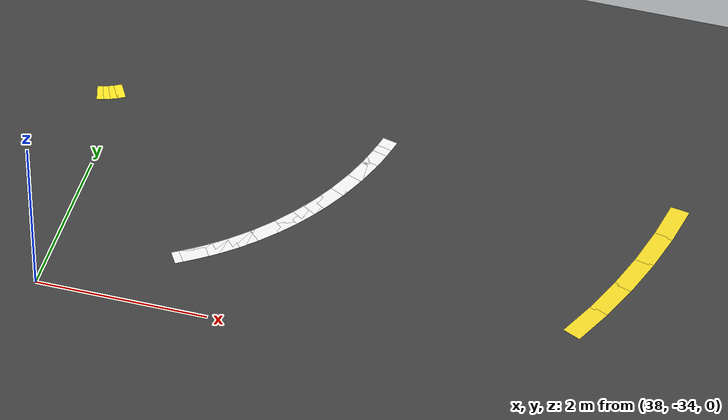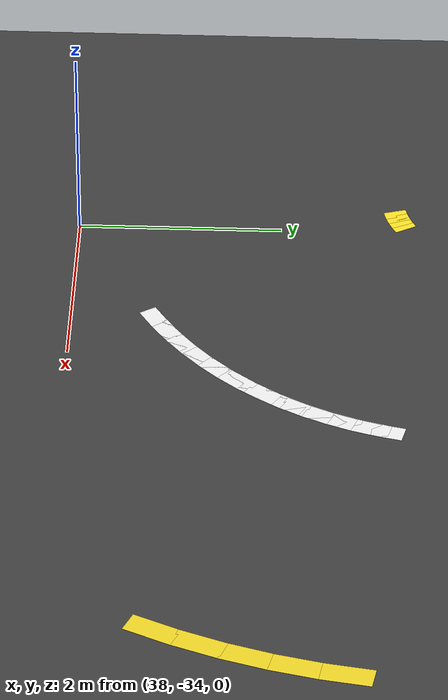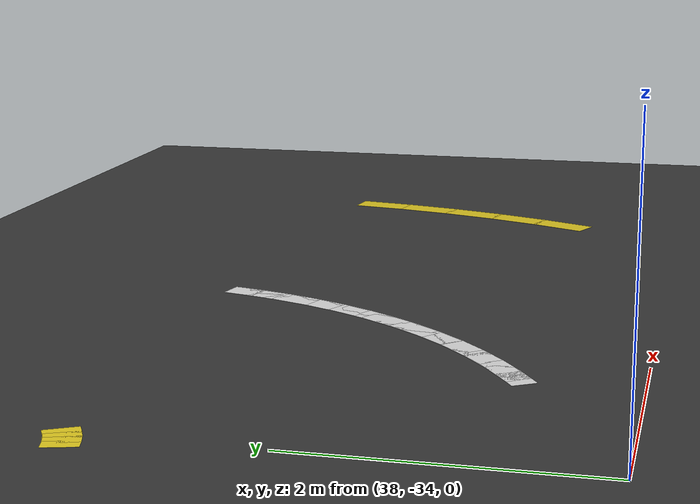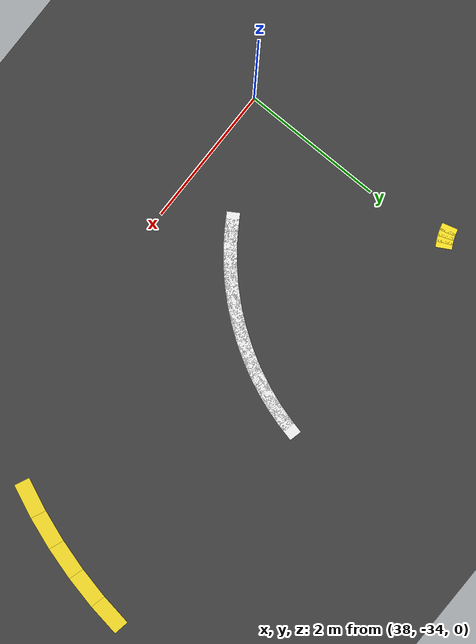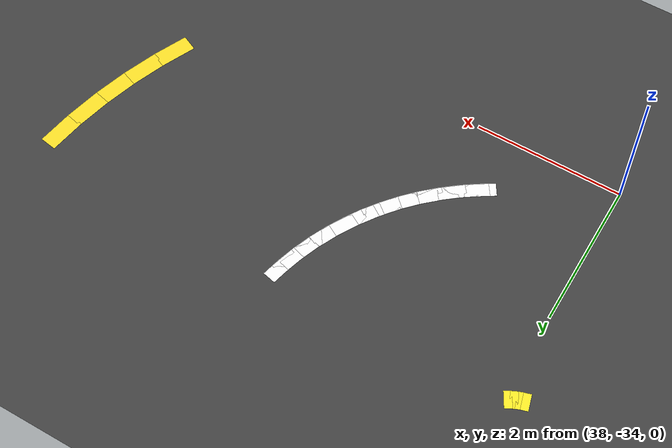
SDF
<sdf version="1.7">
 <world name="compact_city">
  <model name="ground_plane">
   <static>1</static>
   <pose>0 0 0.01 0 -0 0</pose>
   <link name="link">
    <collision name="collision">
     <geometry><plane><normal>0 0 1</normal><size>200 200</size></plane></geometry>
    </collision>
    <visual name="visual">
     <geometry><plane><normal>0 0 1</normal><size>200 200</size></plane></geometry>
     <material>
      <ambient>0.2 0.2 0.2 1</ambient>
      <diffuse>0.25 0.25 0.25 1</diffuse>
      <specular>0.1 0.1 0.1 1</specular>
     </material>
    </visual>
   </link>
  </model>
  <model name="ac_578">
   <static>1</static>
   <pose>39.4803 -33.1845 0.038 0 -0 0.556315</pose>
   <link name="link">
    <visual name="v">
     <geometry><box><size>0.260117 0.18 0.002</size></box></geometry>
     <material><ambient>1 1 1 1</ambient><diffuse>0.95 0.95 0.95 1</diffuse></material>
    </visual>
   </link>
  </model>
  <model name="ac_579">
   <static>1</static>
   <pose>39.6843 -33.0481 0.038 0 -0 0.621815</pose>
   <link name="link">
    <visual name="v">
     <geometry><box><size>0.260117 0.18 0.002</size></box></geometry>
     <material><ambient>1 1 1 1</ambient><diffuse>0.95 0.95 0.95 1</diffuse></material>
    </visual>
   </link>
  </model>
  <model name="ac_580">
   <static>1</static>
   <pose>39.879 -32.8987 0.038 0 -0 0.687215</pose>
   <link name="link">
    <visual name="v">
     <geometry><box><size>0.260117 0.18 0.002</size></box></geometry>
     <material><ambient>1 1 1 1</ambient><diffuse>0.95 0.95 0.95 1</diffuse></material>
    </visual>
   </link>
  </model>
  <model name="ac_581">
   <static>1</static>
   <pose>40.0635 -32.7371 0.038 0 -0 0.752715</pose>
   <link name="link">
    <visual name="v">
     <geometry><box><size>0.260117 0.18 0.002</size></box></geometry>
     <material><ambient>1 1 1 1</ambient><diffuse>0.95 0.95 0.95 1</diffuse></material>
    </visual>
   </link>
  </model>
  <model name="ac_582">
   <static>1</static>
   <pose>40.2371 -32.5635 0.038 0 -0 0.818115</pose>
   <link name="link">
    <visual name="v">
     <geometry><box><size>0.260117 0.18 0.002</size></box></geometry>
     <material><ambient>1 1 1 1</ambient><diffuse>0.95 0.95 0.95 1</diffuse></material>
    </visual>
   </link>
  </model>
  <model name="ac_583">
   <static>1</static>
   <pose>40.3987 -32.379 0.038 0 -0 0.883615</pose>
   <link name="link">
    <visual name="v">
     <geometry><box><size>0.260117 0.18 0.002</size></box></geometry>
     <material><ambient>1 1 1 1</ambient><diffuse>0.95 0.95 0.95 1</diffuse></material>
    </visual>
   </link>
  </model>
  <model name="ac_584">
   <static>1</static>
   <pose>40.5481 -32.1843 0.038 0 -0 0.949015</pose>
   <link name="link">
    <visual name="v">
     <geometry><box><size>0.260117 0.18 0.002</size></box></geometry>
     <material><ambient>1 1 1 1</ambient><diffuse>0.95 0.95 0.95 1</diffuse></material>
    </visual>
   </link>
  </model>
  <model name="ac_585">
   <static>1</static>
   <pose>40.6845 -31.9803 0.038 0 -0 1.01452</pose>
   <link name="link">
    <visual name="v">
     <geometry><box><size>0.260117 0.18 0.002</size></box></geometry>
     <material><ambient>1 1 1 1</ambient><diffuse>0.95 0.95 0.95 1</diffuse></material>
    </visual>
   </link>
  </model>
  <model name="ac_586">
   <static>1</static>
   <pose>40.8072 -31.7677 0.038 0 -0 1.07991</pose>
   <link name="link">
    <visual name="v">
     <geometry><box><size>0.260117 0.18 0.002</size></box></geometry>
     <material><ambient>1 1 1 1</ambient><diffuse>0.95 0.95 0.95 1</diffuse></material>
    </visual>
   </link>
  </model>
  <model name="ac_587">
   <static>1</static>
   <pose>40.9158 -31.5477 0.038 0 -0 1.14542</pose>
   <link name="link">
    <visual name="v">
     <geometry><box><size>0.260117 0.18 0.002</size></box></geometry>
     <material><ambient>1 1 1 1</ambient><diffuse>0.95 0.95 0.95 1</diffuse></material>
    </visual>
   </link>
  </model>
  <model name="ac_588">
   <static>1</static>
   <pose>41.0097 -31.3209 0.038 0 -0 1.21081</pose>
   <link name="link">
    <visual name="v">
     <geometry><box><size>0.260117 0.18 0.002</size></box></geometry>
     <material><ambient>1 1 1 1</ambient><diffuse>0.95 0.95 0.95 1</diffuse></material>
    </visual>
   </link>
  </model>
  <model name="ac_589">
   <static>1</static>
   <pose>41.0886 -31.0886 0.038 0 -0 1.27632</pose>
   <link name="link">
    <visual name="v">
     <geometry><box><size>0.260117 0.18 0.002</size></box></geometry>
     <material><ambient>1 1 1 1</ambient><diffuse>0.95 0.95 0.95 1</diffuse></material>
    </visual>
   </link>
  </model>
  <model name="ac_590">
   <static>1</static>
   <pose>41.1521 -30.8515 0.038 0 -0 1.34171</pose>
   <link name="link">
    <visual name="v">
     <geometry><box><size>0.260117 0.18 0.002</size></box></geometry>
     <material><ambient>1 1 1 1</ambient><diffuse>0.95 0.95 0.95 1</diffuse></material>
    </visual>
   </link>
  </model>
  <model name="ao_635">
   <static>1</static>
   <pose>44.0581 -32.9715 0.038 0 -0 1.14542</pose>
   <link name="link">
    <visual name="v">
     <geometry><box><size>0.494712 0.225 0.002</size></box></geometry>
     <material><ambient>0.9 0.8 0.1 1</ambient><diffuse>0.95 0.85 0.15 1</diffuse></material>
    </visual>
   </link>
  </model>
  <model name="ao_636">
   <static>1</static>
   <pose>44.2385 -32.5362 0.038 0 -0 1.21081</pose>
   <link name="link">
    <visual name="v">
     <geometry><box><size>0.494712 0.225 0.002</size></box></geometry>
     <material><ambient>0.9 0.8 0.1 1</ambient><diffuse>0.95 0.85 0.15 1</diffuse></material>
    </visual>
   </link>
  </model>
  <model name="ao_637">
   <static>1</static>
   <pose>44.3899 -32.0901 0.038 0 -0 1.27632</pose>
   <link name="link">
    <visual name="v">
     <geometry><box><size>0.494712 0.225 0.002</size></box></geometry>
     <material><ambient>0.9 0.8 0.1 1</ambient><diffuse>0.95 0.85 0.15 1</diffuse></material>
    </visual>
   </link>
  </model>
  <model name="ao_638">
   <static>1</static>
   <pose>44.5119 -31.635 0.038 0 -0 1.34171</pose>
   <link name="link">
    <visual name="v">
     <geometry><box><size>0.494712 0.225 0.002</size></box></geometry>
     <material><ambient>0.9 0.8 0.1 1</ambient><diffuse>0.95 0.85 0.15 1</diffuse></material>
    </visual>
   </link>
  </model>
  <model name="ao_639">
   <static>1</static>
   <pose>44.6039 -31.1729 0.038 0 -0 1.40722</pose>
   <link name="link">
    <visual name="v">
     <geometry><box><size>0.494712 0.225 0.002</size></box></geometry>
     <material><ambient>0.9 0.8 0.1 1</ambient><diffuse>0.95 0.85 0.15 1</diffuse></material>
    </visual>
   </link>
  </model>
  <model name="arc_c_396">
   <static>1</static>
   <pose>39.5819 -33.1157 0.038 0 -0 0.589</pose>
   <link name="link">
    <visual name="visual">
     <geometry><box><size>0.324449 0.18 0.002</size></box></geometry>
     <material><ambient>1 1 1 1</ambient><diffuse>0.95 0.95 0.95 1</diffuse></material>
    </visual>
   </link>
  </model>
  <model name="arc_c_397">
   <static>1</static>
   <pose>39.8197 -32.9427 0.038 0 -0 0.6676</pose>
   <link name="link">
    <visual name="visual">
     <geometry><box><size>0.324449 0.18 0.002</size></box></geometry>
     <material><ambient>1 1 1 1</ambient><diffuse>0.95 0.95 0.95 1</diffuse></material>
    </visual>
   </link>
  </model>
  <model name="arc_c_398">
   <static>1</static>
   <pose>40.0436 -32.7516 0.038 0 -0 0.7461</pose>
   <link name="link">
    <visual name="visual">
     <geometry><box><size>0.324449 0.18 0.002</size></box></geometry>
     <material><ambient>1 1 1 1</ambient><diffuse>0.95 0.95 0.95 1</diffuse></material>
    </visual>
   </link>
  </model>
  <model name="arc_c_399">
   <static>1</static>
   <pose>40.2516 -32.5436 0.038 0 -0 0.8247</pose>
   <link name="link">
    <visual name="visual">
     <geometry><box><size>0.324449 0.18 0.002</size></box></geometry>
     <material><ambient>1 1 1 1</ambient><diffuse>0.95 0.95 0.95 1</diffuse></material>
    </visual>
   </link>
  </model>
  <model name="arc_c_400">
   <static>1</static>
   <pose>40.4427 -32.3197 0.038 0 -0 0.9032</pose>
   <link name="link">
    <visual name="visual">
     <geometry><box><size>0.324449 0.18 0.002</size></box></geometry>
     <material><ambient>1 1 1 1</ambient><diffuse>0.95 0.95 0.95 1</diffuse></material>
    </visual>
   </link>
  </model>
  <model name="arc_c_401">
   <static>1</static>
   <pose>40.6157 -32.0819 0.038 0 -0 0.9817</pose>
   <link name="link">
    <visual name="visual">
     <geometry><box><size>0.324449 0.18 0.002</size></box></geometry>
     <material><ambient>1 1 1 1</ambient><diffuse>0.95 0.95 0.95 1</diffuse></material>
    </visual>
   </link>
  </model>
  <model name="arc_c_402">
   <static>1</static>
   <pose>40.7694 -31.8309 0.038 0 -0 1.0603</pose>
   <link name="link">
    <visual name="visual">
     <geometry><box><size>0.324449 0.18 0.002</size></box></geometry>
     <material><ambient>1 1 1 1</ambient><diffuse>0.95 0.95 0.95 1</diffuse></material>
    </visual>
   </link>
  </model>
  <model name="arc_c_403">
   <static>1</static>
   <pose>40.9029 -31.5687 0.038 0 -0 1.1388</pose>
   <link name="link">
    <visual name="visual">
     <geometry><box><size>0.324449 0.18 0.002</size></box></geometry>
     <material><ambient>1 1 1 1</ambient><diffuse>0.95 0.95 0.95 1</diffuse></material>
    </visual>
   </link>
  </model>
  <model name="arc_c_404">
   <static>1</static>
   <pose>41.0155 -31.2969 0.038 0 -0 1.2174</pose>
   <link name="link">
    <visual name="visual">
     <geometry><box><size>0.324449 0.18 0.002</size></box></geometry>
     <material><ambient>1 1 1 1</ambient><diffuse>0.95 0.95 0.95 1</diffuse></material>
    </visual>
   </link>
  </model>
  <model name="arc_c_405">
   <static>1</static>
   <pose>41.1065 -31.0172 0.038 0 -0 1.2959</pose>
   <link name="link">
    <visual name="visual">
     <geometry><box><size>0.324449 0.18 0.002</size></box></geometry>
     <material><ambient>1 1 1 1</ambient><diffuse>0.95 0.95 0.95 1</diffuse></material>
    </visual>
   </link>
  </model>
  <model name="arc_in_412">
   <static>1</static>
   <pose>37.7441 -30.8655 0.038 0 -0 0.2749</pose>
   <link name="link">
    <visual name="visual">
     <geometry><box><size>0.100668 0.225 0.002</size></box></geometry>
     <material><ambient>0.95 0.85 0.1 1</ambient><diffuse>1 0.9 0.15 1</diffuse></material>
    </visual>
   </link>
  </model>
  <model name="arc_in_413">
   <static>1</static>
   <pose>37.8113 -30.8438 0.038 0 -0 0.3534</pose>
   <link name="link">
    <visual name="visual">
     <geometry><box><size>0.100668 0.225 0.002</size></box></geometry>
     <material><ambient>0.95 0.85 0.1 1</ambient><diffuse>1 0.9 0.15 1</diffuse></material>
    </visual>
   </link>
  </model>
  <model name="arc_in_414">
   <static>1</static>
   <pose>37.8765 -30.8167 0.038 0 -0 0.432</pose>
   <link name="link">
    <visual name="visual">
     <geometry><box><size>0.100668 0.225 0.002</size></box></geometry>
     <material><ambient>0.95 0.85 0.1 1</ambient><diffuse>1 0.9 0.15 1</diffuse></material>
    </visual>
   </link>
  </model>
  <model name="arc_in_415">
   <static>1</static>
   <pose>37.9393 -30.7846 0.038 0 -0 0.5105</pose>
   <link name="link">
    <visual name="visual">
     <geometry><box><size>0.100668 0.225 0.002</size></box></geometry>
     <material><ambient>0.95 0.85 0.1 1</ambient><diffuse>1 0.9 0.15 1</diffuse></material>
    </visual>
   </link>
  </model>
 </world>
</sdf>
